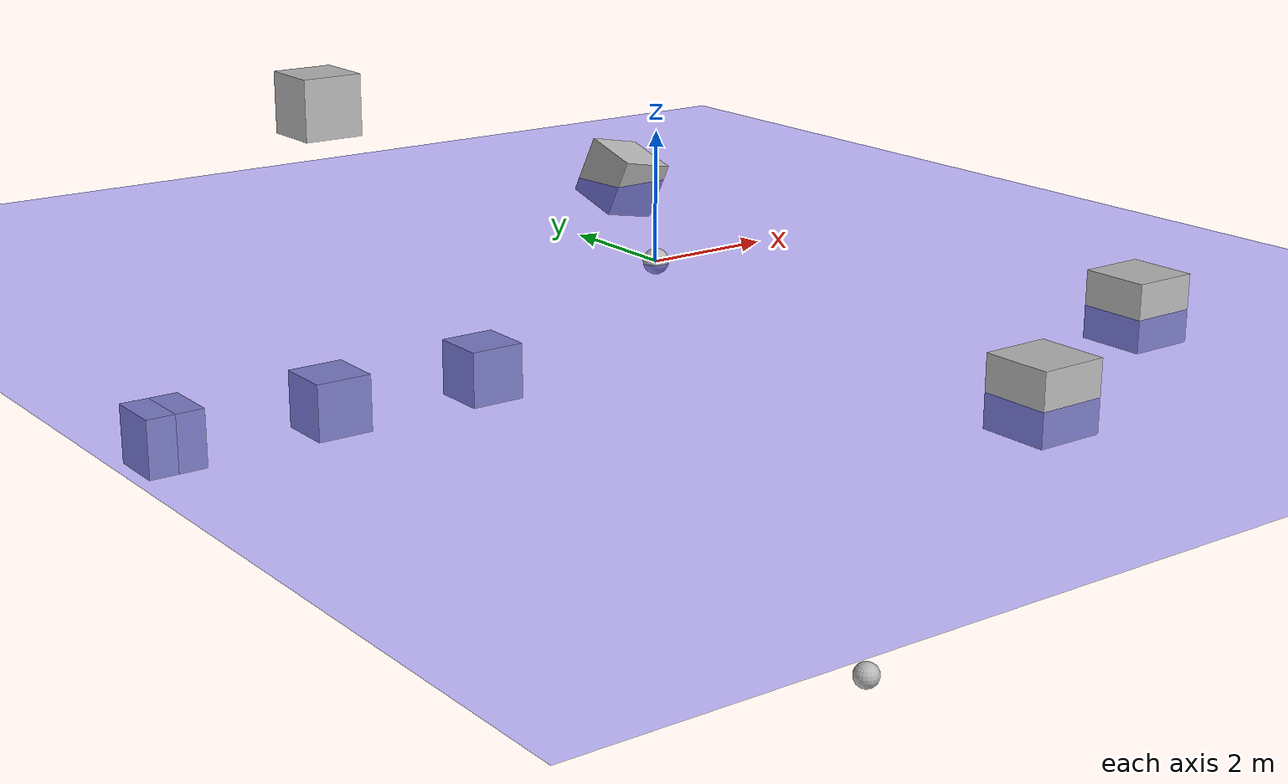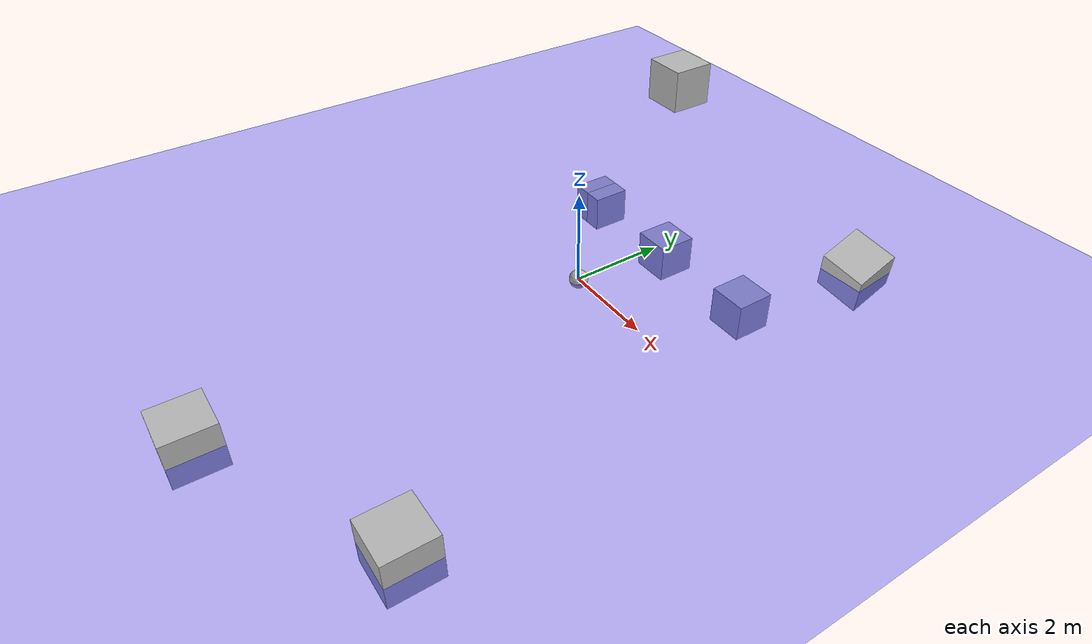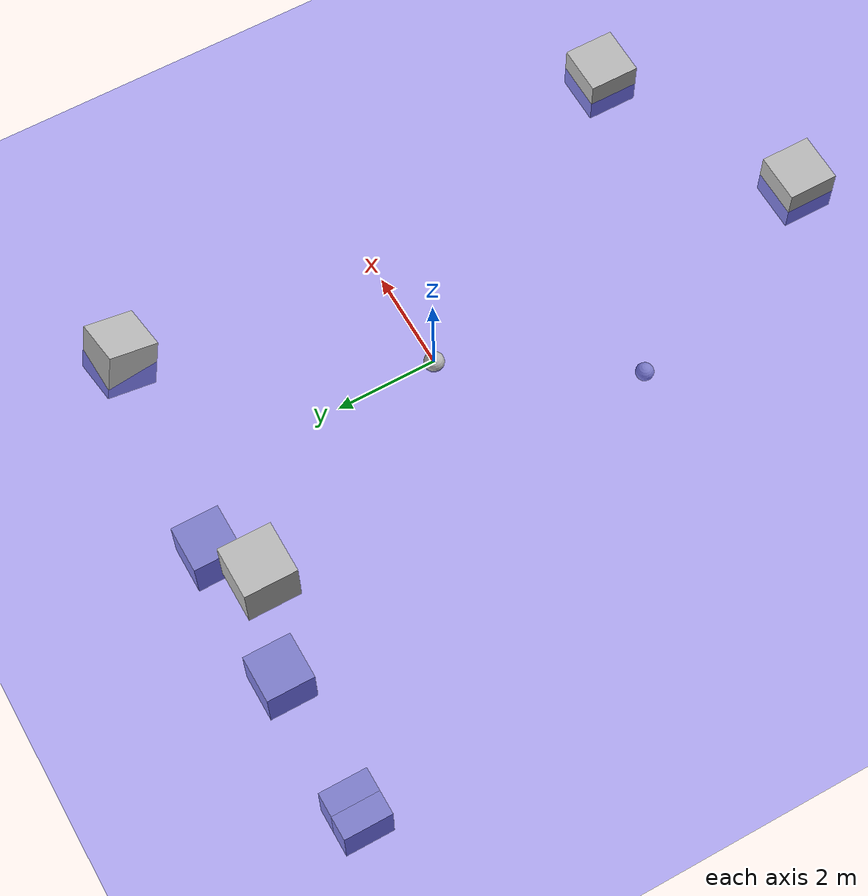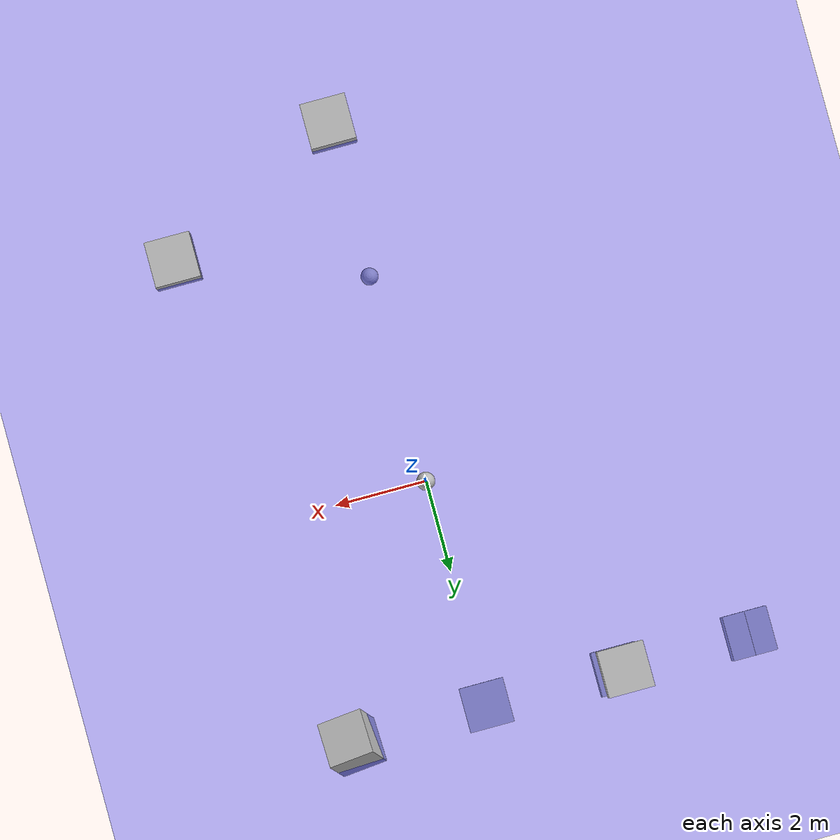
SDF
<?xml version="1.0" ?>
<!--
  Gazebo buoyancy plugin demo. This world demonstrates a graded
  buoyancy world consisting of some basic shapes which should eventually float
  up.
-->
<sdf version="1.6">
  <world name="buoyancy">
    <plugin
      filename="gz-sim-apply-link-wrench-system"
      name="gz::sim::systems::ApplyLinkWrench">
    </plugin>

    <physics name="1ms" type="ode">
      <max_step_size>0.001</max_step_size>
      <real_time_factor>1.0</real_time_factor>
    </physics>
    <plugin
      filename="gz-sim-physics-system"
      name="gz::sim::systems::Physics">
    </plugin>
    <plugin
      filename="gz-sim-user-commands-system"
      name="gz::sim::systems::UserCommands">
    </plugin>
    <plugin
      filename="gz-sim-scene-broadcaster-system"
      name="gz::sim::systems::SceneBroadcaster">
    </plugin>
    <plugin
      filename="gz-sim-buoyancy-system"
      name="gz::sim::systems::Buoyancy">
      <graded_buoyancy>
        <default_density>1000</default_density>
        <density_change>
          <above_depth>0</above_depth>
          <density>1</density>
        </density_change>
      </graded_buoyancy>

      <!-- enable by link name -->
      <enable>lighter_than_water::ball::body</enable>

      <!-- enable by nested model name -->
      <enable>lighter_than_water::box</enable>

      <!-- enable by top level model name -->
      <enable>balloon_lighter_than_air</enable>
      <enable>box_neutral_buoyancy</enable>
      <enable>box_neutral_buoyancy_collision_offset</enable>
      <enable>multi_collision_neutral_buoyancy</enable>
      <enable>box_negative_buoyancy</enable>
    </plugin>

    <light type="directional" name="sun">
      <cast_shadows>true</cast_shadows>
      <pose>0 0 10 0 0 0</pose>
      <diffuse>1 1 1 1</diffuse>
      <specular>0.5 0.5 0.5 1</specular>
      <attenuation>
        <range>1000</range>
        <constant>0.9</constant>
        <linear>0.01</linear>
        <quadratic>0.001</quadratic>
      </attenuation>
      <direction>-0.5 0.1 -0.9</direction>
    </light>

    <model name="water_plane">
      <static>true</static>
      <link name="link">
        <visual name="water_plane">
          <geometry>
            <plane>
              <size>100 100</size>
              <normal>0 0 1</normal>
            </plane>
          </geometry>
          <material>
            <ambient>0 0 1 0.5</ambient>
            <diffuse>0 0 1 0.5</diffuse>
            <specular>0 0 1 0.5</specular>
          </material>
        </visual>
      </link>
    </model>

    <model name='lighter_than_water'>
      <pose>0 0 0 0 0 0</pose>
      <!-- This sphere should bob up and down. -->
      <model name="ball">
        <link name='body'>
          <pose>0 0 0 0 0 0</pose>
          <inertial>
            <mass>25</mass>
            <inertia>
              <ixx>86.28907821859966</ixx>
              <ixy>0</ixy>
              <ixz>0</ixz>
              <iyy>86.28907821859966</iyy>
              <iyz>0</iyz>
              <izz>5.026548245743671</izz>
            </inertia>
          </inertial>

          <visual name='body_visual'>
            <geometry>
              <sphere>
                <radius>0.2</radius>
              </sphere>
            </geometry>
          </visual>
          <collision name='body_collision'>
            <geometry>
              <sphere>
                <radius>0.2</radius>
              </sphere>
            </geometry>
          </collision>
        </link>
      </model>

      <!-- This box should float. -->
      <model name='box'>
        <pose>3 5 0 0.3 0.2 0.1</pose>
        <link name='body'>
          <inertial>
            <mass>200</mass>
            <inertia>
              <ixx>33.33</ixx>
              <ixy>0</ixy>
              <ixz>0</ixz>
              <iyy>33.33</iyy>
              <iyz>0</iyz>
              <izz>33.33</izz>
            </inertia>
          </inertial>

          <visual name='body_visual'>
            <geometry>
              <box>
                <size>1 1 1</size>
              </box>
            </geometry>
          </visual>
          <collision name='body_collision'>
            <geometry>
               <box>
                <size>1 1 1</size>
              </box>
            </geometry>
          </collision>
        </link>
      </model>
    </model>

    <!-- This balloon should shoot up -->
    <model name='balloon_lighter_than_air'>
      <pose>0 -5 -5 0 0 0</pose>
      <link name='body'>
        <pose>0 0 0 0 0 0</pose>
        <inertial>
          <mass>0.1</mass>
          <inertia>
            <ixx>86.28907821859966</ixx>
            <ixy>0</ixy>
            <ixz>0</ixz>
            <iyy>86.28907821859966</iyy>
            <iyz>0</iyz>
            <izz>5.026548245743671</izz>
          </inertia>
        </inertial>

        <visual name='body_visual'>
          <geometry>
            <sphere>
              <radius>0.2</radius>
            </sphere>
          </geometry>
        </visual>
        <collision name='body_collision'>
          <geometry>
            <sphere>
              <radius>0.2</radius>
            </sphere>
          </geometry>
        </collision>
      </link>
    </model>

    <!-- This box is neutrally buoyant and therefore should stay still -->
    <model name='box_neutral_buoyancy'>
      <pose>0 5 -3 0 0 0</pose>
      <link name='body'>
        <inertial>
          <mass>1000</mass>
          <pose>0 0 0.1 0 0 0</pose>
          <inertia>
            <ixx>86.28907821859966</ixx>
            <ixy>0</ixy>
            <ixz>0</ixz>
            <iyy>86.28907821859966</iyy>
            <iyz>0</iyz>
            <izz>5.026548245743671</izz>
          </inertia>
        </inertial>

        <visual name='body_visual'>
          <geometry>
            <box>
              <size>1 1 1</size>
            </box>
          </geometry>
        </visual>
        <collision name='body_collision'>
          <geometry>
             <box>
              <size>1 1 1</size>
            </box>
          </geometry>
        </collision>
      </link>
    </model>

    <!--
      This box is neutrally buoyant and therefore should stay still.
      Its link origin is above water, but its collision is below.
    -->
    <model name='box_neutral_buoyancy_collision_offset'>
      <pose>-3 5 2 0 0 0</pose>
      <link name='body'>
        <inertial>
          <mass>1000</mass>
          <pose>0 0 -4.9 0 0 0</pose>
          <inertia>
            <ixx>86.28907821859966</ixx>
            <ixy>0</ixy>
            <ixz>0</ixz>
            <iyy>86.28907821859966</iyy>
            <iyz>0</iyz>
            <izz>5.026548245743671</izz>
          </inertia>
        </inertial>

        <visual name='link_origin'>
          <geometry>
            <box>
              <size>1 1 1</size>
            </box>
          </geometry>
        </visual>
        <visual name='collision_origin'>
          <pose>0 0 -5 0 0 0</pose>
          <geometry>
            <box>
              <size>1 1 1</size>
            </box>
          </geometry>
        </visual>
        <collision name='buoyancy_volume'>
          <pose>0 0 -5 0 0 0</pose>
          <geometry>
             <box>
              <size>1 1 1</size>
            </box>
          </geometry>
        </collision>
      </link>
    </model>

    <!--
      This box is neutrally buoyant and therefore should stay still.
      It has multiple collision shapes.
    -->
    <model name='multi_collision_neutral_buoyancy'>
      <pose>-6 5 -3 0 0 0</pose>
      <link name='body'>
        <inertial>
          <mass>1000</mass>
          <pose>0 0 0.1 0 0 0</pose>
          <inertia>
            <ixx>86.28907821859966</ixx>
            <ixy>0</ixy>
            <ixz>0</ixz>
            <iyy>86.28907821859966</iyy>
            <iyz>0</iyz>
            <izz>5.026548245743671</izz>
          </inertia>
        </inertial>

        <visual name='collision_1_vis'>
          <pose>-0.25 0 0 0 0 0</pose>
          <geometry>
            <box>
              <size>0.5 1 1</size>
            </box>
          </geometry>
        </visual>
        <visual name='collision_2_vis'>
          <pose>0.25 0 0 0 0 0</pose>
          <geometry>
            <box>
              <size>0.5 1 1</size>
            </box>
          </geometry>
        </visual>
        <collision name='collision_1'>
          <pose>-0.25 0 0 0 0 0</pose>
          <geometry>
             <box>
              <size>0.5 1 1</size>
            </box>
          </geometry>
        </collision>
        <collision name='collision_2'>
          <pose>0.25 0 0 0 0 0</pose>
          <geometry>
             <box>
              <size>0.5 1 1</size>
            </box>
          </geometry>
        </collision>
      </link>
    </model>

    <!-- This box is negatively buoyant and therefore should sink -->
    <model name='box_negative_buoyancy'>
      <pose>0 -8 0 0 0 0</pose>
      <link name='body'>
        <inertial>
          <mass>1050</mass>
          <pose>0 0 0.1 0 0 0</pose>
          <inertia>
            <ixx>86.28907821859966</ixx>
            <ixy>0</ixy>
            <ixz>0</ixz>
            <iyy>86.28907821859966</iyy>
            <iyz>0</iyz>
            <izz>5.026548245743671</izz>
          </inertia>
        </inertial>

        <visual name='body_visual'>
          <geometry>
            <box>
              <size>1 1 1</size>
            </box>
          </geometry>
        </visual>
        <collision name='body_collision'>
          <geometry>
             <box>
              <size>1 1 1</size>
            </box>
          </geometry>
        </collision>
      </link>
    </model>

    <!-- Not affected by buoyancy -->
    <model name='box_no_buoyancy'>
      <pose>4 -6 0 0 0 0</pose>
      <link name='body'>
        <inertial>
          <mass>1050</mass>
          <pose>0 0 0.1 0 0 0</pose>
          <inertia>
            <ixx>86.28907821859966</ixx>
            <ixy>0</ixy>
            <ixz>0</ixz>
            <iyy>86.28907821859966</iyy>
            <iyz>0</iyz>
            <izz>5.026548245743671</izz>
          </inertia>
        </inertial>

        <visual name='body_visual'>
          <geometry>
            <box>
              <size>1 1 1</size>
            </box>
          </geometry>
        </visual>
        <collision name='body_collision'>
          <geometry>
             <box>
              <size>1 1 1</size>
            </box>
          </geometry>
        </collision>
      </link>
    </model>
  </world>
</sdf>
